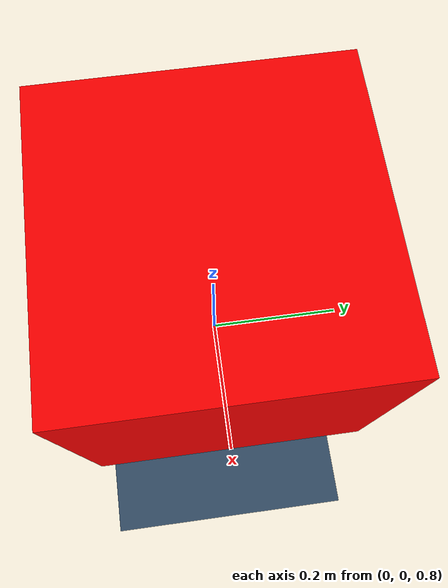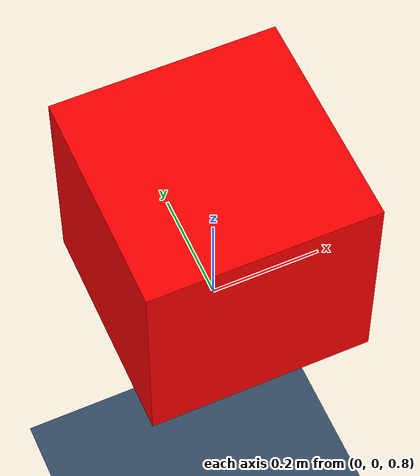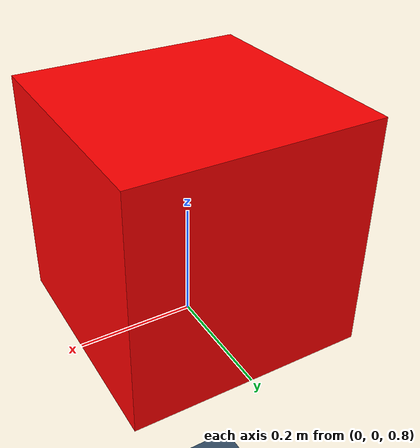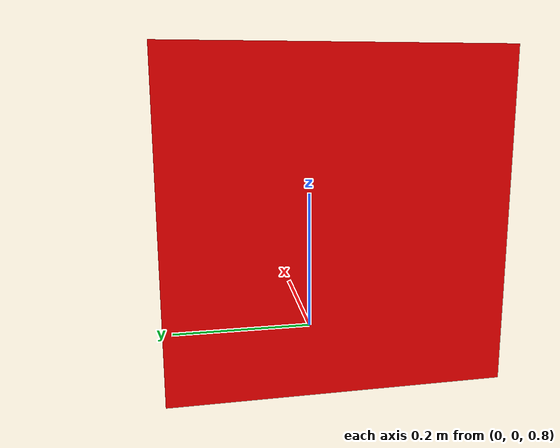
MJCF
<mujoco model="force_sensor_test">
    <compiler angle="degree" coordinate="local"/>
    <option timestep="0.01" gravity="0 0 -9.81"/>

    <!-- Define the world body -->
    <worldbody>
        <!-- Ground plane -->
        <geom name="ground" type="plane" pos="0 0 0" size="10 10 0.1" rgba="0.2 0.3 0.4 1"/>

        <!-- Cuboid -->
        <body name="cuboid" pos="0 0 1">
            <geom name="cuboid_geom" type="box" size="0.2 0.2 0.2" rgba="1 0 0 1"/>
            <joint name="cuboid_joint" type="free"/>
            <!-- Sensor site similar to quadruped -->
            <site name="contact_site" pos="0 0 -0.2" size="0.05" rgba="0 1 0 1"/>
            <body name="dummy_body" pos="0 0 -0.25">
                <inertial pos="0 0 0" mass="0.000001" diaginertia="0 0 0"/>
                <geom type="box" size="0.01 0.01 0.01" rgba="0 1 0 1"/>
            </body>
        </body>
    </worldbody>

    <!-- Sensors -->
    <sensor>
        <!-- Force sensor at the cuboid's contact site -->
        <force site="contact_site" name="contact_force"/>
    </sensor>
</mujoco>
